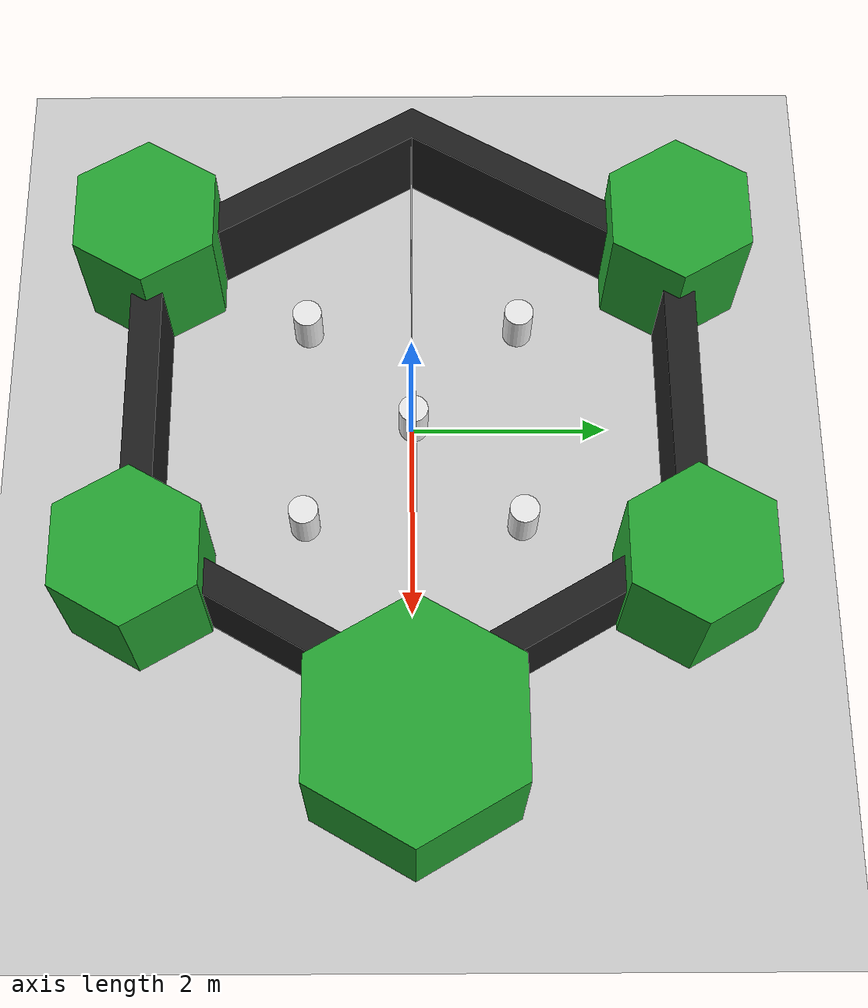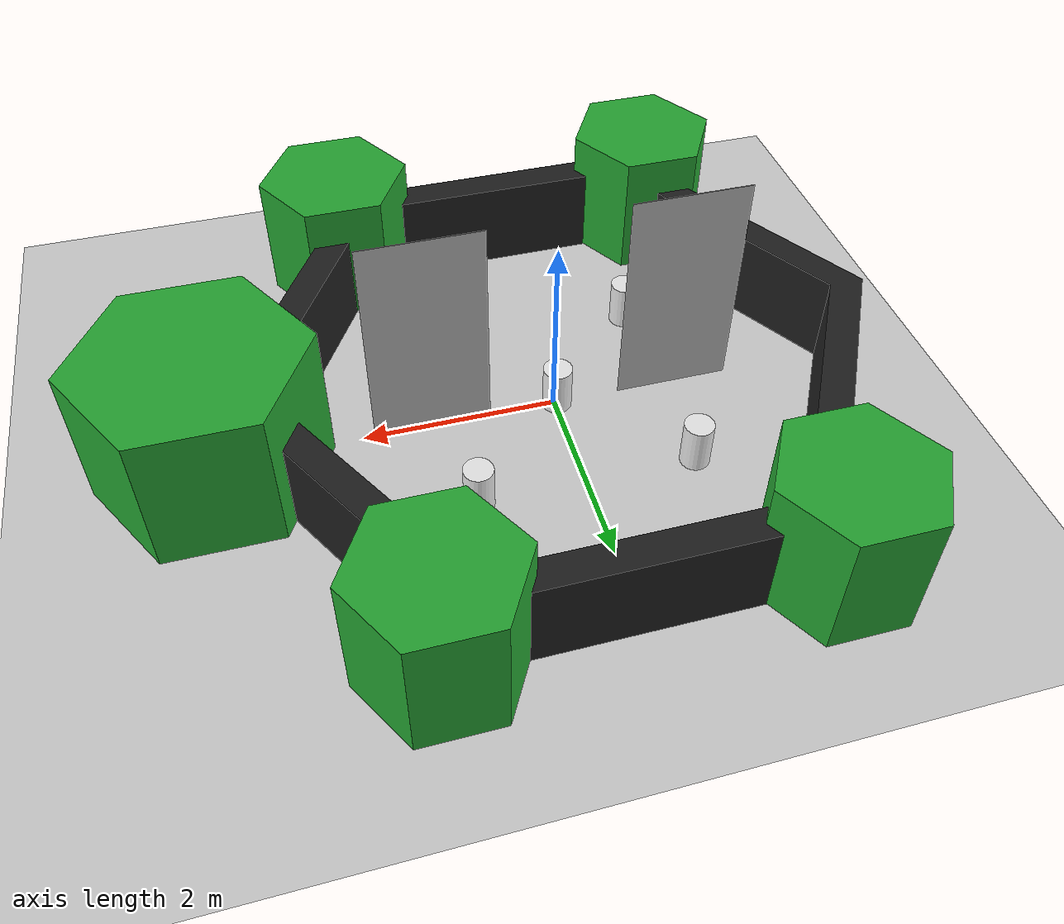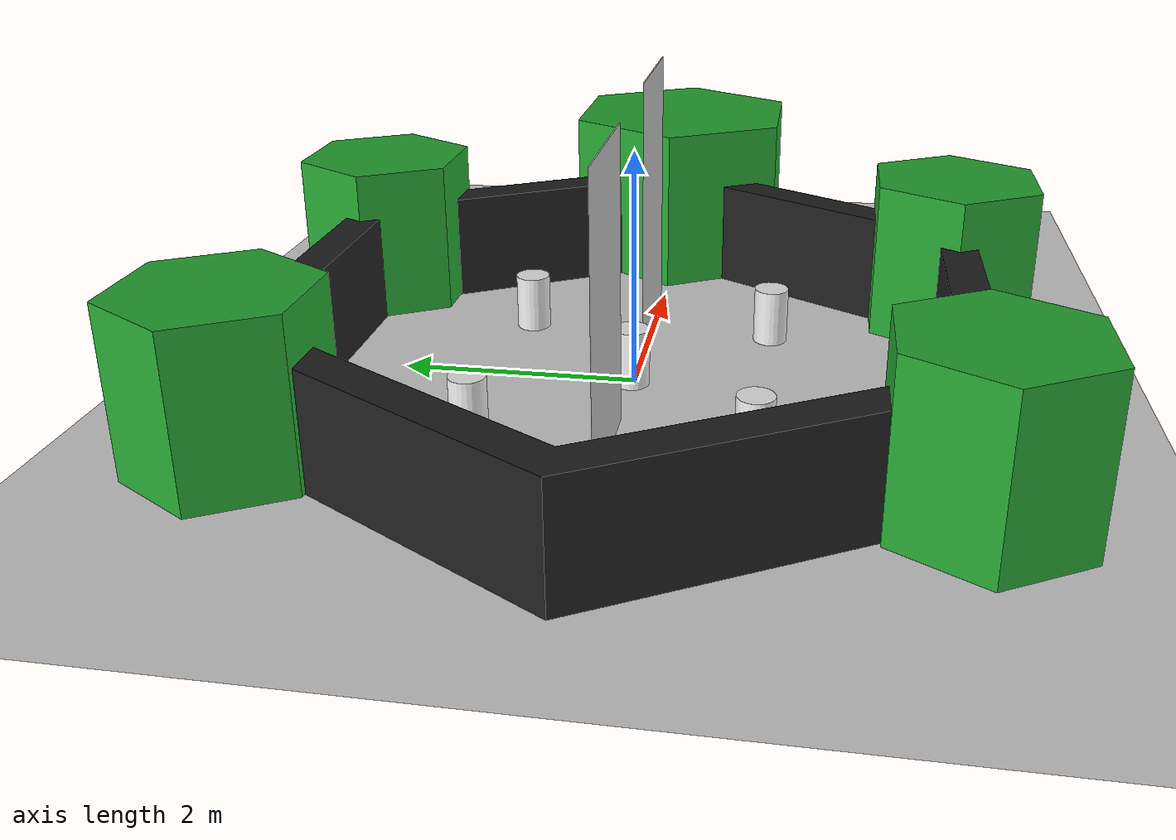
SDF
<sdf version="1.6">
 <world name="default">
  <light name="sun" type="directional">
   <pose>0 0 10 0 -0 0</pose>
   <diffuse>0.8 0.8 0.8 1</diffuse>
   <specular>0.2 0.2 0.2 1</specular>
   <attenuation>
    <range>1000</range>
    <constant>0.9</constant>
    <linear>0.01</linear>
    <quadratic>0.001</quadratic>
   </attenuation>
   <direction>-0.5 0.1 -0.9</direction>
  </light>
  <model name="ground_plane">
   <static>1</static>
   <link name="link">
    <collision name="collision">
     <geometry><plane><normal>0 0 1</normal><size>100 100</size></plane></geometry>
     <surface>
      <contact><collide_bitmask>65535</collide_bitmask></contact>
      <friction><ode><mu>100</mu><mu2>50</mu2></ode></friction>
     </surface>
    </collision>
    <visual name="visual">
     <cast_shadows>0</cast_shadows>
     <geometry><plane><normal>0 0 1</normal><size>100 100</size></plane></geometry>
     <material>
      <script><uri>file://media/materials/scripts/gazebo.material</uri><name>Gazebo/Grey</name></script>
     </material>
    </visual>
   </link>
  </model>
  <physics name="default_physics" default="0" type="ode">
   <real_time_update_rate>0</real_time_update_rate>
   <max_step_size>0.001</max_step_size>
   <real_time_factor>1</real_time_factor>
   <ode>
    <solver>
     <type>quick</type>
     <iters>150</iters>
     <precon_iters>0</precon_iters>
     <sor>1.4</sor>
     <use_dynamic_moi_rescaling>1</use_dynamic_moi_rescaling>
    </solver>
    <constraints>
     <cfm>1e-05</cfm>
     <erp>0.2</erp>
     <contact_max_correcting_vel>2000</contact_max_correcting_vel>
     <contact_surface_layer>0.01</contact_surface_layer>
    </constraints>
   </ode>
  </physics>
  <scene><ambient>0.4 0.4 0.4 1</ambient><background>0.7 0.7 0.7 1</background><shadows>0</shadows></scene>
  <gravity>0 0 -9.8</gravity>
  <magnetic_field>6e-06 2.3e-05 -4.2e-05</magnetic_field>
  <atmosphere type="adiabatic"/>
  <audio><device>default</device></audio>
  <spherical_coordinates>
   <surface_model>EARTH_WGS84</surface_model>
   <latitude_deg>0</latitude_deg>
   <longitude_deg>0</longitude_deg>
   <elevation>0</elevation>
   <heading_deg>0</heading_deg>
  </spherical_coordinates>
  <model name="ros_symbol_5_pillars_with_walls">
   <link name="symbol">
    <inertial>
     <mass>1</mass>
     <inertia><ixx>1</ixx><ixy>0</ixy><ixz>0</ixz><iyy>1</iyy><iyz>0</iyz><izz>1</izz></inertia>
    </inertial>
    <visual name="left_hand">
     <pose>1.8 2.7 0 0 -0 0</pose>
     <geometry>
      <mesh><uri>model://turtlebot3_world/meshes/hexagon.dae</uri><scale>0.55 0.55 0.55</scale></mesh>
     </geometry>
     <material>
      <script><uri>file://media/materials/scripts/gazebo.material</uri><name>Gazebo/Green</name></script>
      <shader type="vertex"><normal_map>__default__</normal_map></shader>
      <ambient>0 1 0 1</ambient>
      <diffuse>0 1 0 1</diffuse>
      <specular>0.1 0.1 0.1 1</specular>
      <emissive>0 0 0 1</emissive>
     </material>
    </visual>
    <visual name="two_two">
     <pose>0 0 0.25 0 -0 0</pose>
     <geometry><cylinder><radius>0.15</radius><length>0.5</length></cylinder></geometry>
     <material>
      <script><uri>file://media/materials/scripts/gazebo.material</uri><name>Gazebo/White</name></script>
      <shader type="vertex"><normal_map>__default__</normal_map></shader>
      <ambient>1 1 1 1</ambient>
      <diffuse>1 1 1 1</diffuse>
      <specular>0 0 0 1</specular>
      <emissive>0 0 0 1</emissive>
     </material>
    </visual>
    <visual name="right_hand">
     <pose>1.8 -2.7 0 0 -0 0</pose>
     <geometry>
      <mesh><uri>model://turtlebot3_world/meshes/hexagon.dae</uri><scale>0.55 0.55 0.55</scale></mesh>
     </geometry>
     <material>
      <script><uri>file://media/materials/scripts/gazebo.material</uri><name>Gazebo/Green</name></script>
      <shader type="vertex"><normal_map>__default__</normal_map></shader>
      <ambient>0 1 0 1</ambient>
      <diffuse>0 1 0 1</diffuse>
      <specular>0.1 0.1 0.1 1</specular>
      <emissive>0 0 0 1</emissive>
     </material>
    </visual>
    <visual name="right_foot">
     <pose>-1.8 -2.7 0 0 -0 0</pose>
     <geometry>
      <mesh><uri>model://turtlebot3_world/meshes/hexagon.dae</uri><scale>0.55 0.55 0.55</scale></mesh>
     </geometry>
     <material>
      <script><uri>file://media/materials/scripts/gazebo.material</uri><name>Gazebo/Green</name></script>
      <shader type="vertex"><normal_map>__default__</normal_map></shader>
      <ambient>0 1 0 1</ambient>
      <diffuse>0 1 0 1</diffuse>
      <specular>0.1 0.1 0.1 1</specular>
      <emissive>0 0 0 1</emissive>
     </material>
    </visual>
    <visual name="three_three">
     <pose>1.1 1.1 0.25 0 -0 0</pose>
     <geometry><cylinder><radius>0.15</radius><length>0.5</length></cylinder></geometry>
     <material>
      <script><uri>file://media/materials/scripts/gazebo.material</uri><name>Gazebo/White</name></script>
      <shader type="vertex"><normal_map>__default__</normal_map></shader>
      <ambient>1 1 1 1</ambient>
      <diffuse>1 1 1 1</diffuse>
      <specular>0 0 0 1</specular>
      <emissive>0 0 0 1</emissive>
     </material>
    </visual>
    <visual name="head">
     <pose>3.5 0 -0.5 0 -0 0</pose>
     <geometry>
      <mesh><uri>model://turtlebot3_world/meshes/hexagon.dae</uri><scale>0.8 0.8 0.8</scale></mesh>
     </geometry>
     <material>
      <script><uri>file://media/materials/scripts/gazebo.material</uri><name>Gazebo/Green</name></script>
      <shader type="vertex"><normal_map>__default__</normal_map></shader>
      <ambient>0 1 0 1</ambient>
      <diffuse>0 1 0 1</diffuse>
      <specular>0.1 0.1 0.1 1</specular>
      <emissive>0 0 0 1</emissive>
     </material>
    </visual>
    <visual name="body">
     <pose>0 0 -0.3 0 0 -1.5708</pose>
     <geometry>
      <mesh><uri>model://turtlebot3_world/meshes/wall.dae</uri><scale>0.25 0.25 0.25</scale></mesh>
     </geometry>
     <material>
      <script><uri>file://media/materials/scripts/gazebo.material</uri><name>Gazebo/FlatBlack</name></script>
      <shader type="vertex"><normal_map>__default__</normal_map></shader>
      <ambient>0.1 0.1 0.1 1</ambient>
      <diffuse>0.1 0.1 0.1 1</diffuse>
      <specular>0.01 0.01 0.01 1</specular>
      <emissive>0 0 0 1</emissive>
     </material>
    </visual>
    <visual name="three_one">
     <pose>1.1 -1.1 0.25 0 -0 0</pose>
     <geometry><cylinder><radius>0.15</radius><length>0.5</length></cylinder></geometry>
     <material>
      <script><uri>file://media/materials/scripts/gazebo.material</uri><name>Gazebo/White</name></script>
      <shader type="vertex"><normal_map>__default__</normal_map></shader>
      <ambient>1 1 1 1</ambient>
      <diffuse>1 1 1 1</diffuse>
      <specular>0 0 0 1</specular>
      <emissive>0 0 0 1</emissive>
     </material>
    </visual>
    <visual name="one_one">
     <pose>-1.1 -1.1 0.25 0 -0 0</pose>
     <geometry><cylinder><radius>0.15</radius><length>0.5</length></cylinder></geometry>
     <material>
      <script><uri>file://media/materials/scripts/gazebo.material</uri><name>Gazebo/White</name></script>
      <shader type="vertex"><normal_map>__default__</normal_map></shader>
      <ambient>1 1 1 1</ambient>
      <diffuse>1 1 1 1</diffuse>
      <specular>0 0 0 1</specular>
      <emissive>0 0 0 1</emissive>
     </material>
    </visual>
    <visual name="one_three">
     <pose>-1.1 1.1 0.25 0 -0 0</pose>
     <geometry><cylinder><radius>0.15</radius><length>0.5</length></cylinder></geometry>
     <material>
      <script><uri>file://media/materials/scripts/gazebo.material</uri><name>Gazebo/White</name></script>
      <shader type="vertex"><normal_map>__default__</normal_map></shader>
      <ambient>1 1 1 1</ambient>
      <diffuse>1 1 1 1</diffuse>
      <specular>0 0 0 1</specular>
      <emissive>0 0 0 1</emissive>
     </material>
    </visual>
    <visual name="left_foot">
     <pose>-1.8 2.7 0 0 -0 0</pose>
     <geometry>
      <mesh><uri>model://turtlebot3_world/meshes/hexagon.dae</uri><scale>0.55 0.55 0.55</scale></mesh>
     </geometry>
     <material>
      <script><uri>file://media/materials/scripts/gazebo.material</uri><name>Gazebo/Green</name></script>
      <shader type="vertex"><normal_map>__default__</normal_map></shader>
      <ambient>0 1 0 1</ambient>
      <diffuse>0 1 0 1</diffuse>
      <specular>0.1 0.1 0.1 1</specular>
      <emissive>0 0 0 1</emissive>
     </material>
    </visual>
    <collision name="left_foot">
     <pose>-1.8 2.7 0 0 -0 0</pose>
     <geometry>
      <mesh>
       <uri>/opt/ros/melodic/share/turtlebot3_gazebo/models/turtlebot3_world/meshes/hexagon.dae</uri>
       <scale>0.55 0.55 0.55</scale>
      </mesh>
     </geometry>
     <surface>
      <friction>
       <ode><mu>1</mu><mu2>1</mu2><fdir1>0 0 0</fdir1><slip1>0</slip1><slip2>0</slip2></ode>
       <torsional>
        <coefficient>1</coefficient>
        <patch_radius>0</patch_radius>
        <surface_radius>0</surface_radius>
        <use_patch_radius>1</use_patch_radius>
        <ode><slip>0</slip></ode>
       </torsional>
      </friction>
      <bounce><restitution_coefficient>0</restitution_coefficient><threshold>1e+06</threshold></bounce>
      <contact>
       <collide_without_contact>0</collide_without_contact>
       <collide_without_contact_bitmask>1</collide_without_contact_bitmask>
       <collide_bitmask>1</collide_bitmask>
       <ode>
        <soft_cfm>0</soft_cfm>
        <soft_erp>0.2</soft_erp>
        <kp>1e+13</kp>
        <kd>1</kd>
        <max_vel>0.01</max_vel>
        <min_depth>0</min_depth>
       </ode>
       <bullet>
        <split_impulse>1</split_impulse>
        <split_impulse_penetration_threshold>-0.01</split_impulse_penetration_threshold>
        <soft_cfm>0</soft_cfm>
        <soft_erp>0.2</soft_erp>
        <kp>1e+13</kp>
        <kd>1</kd>
       </bullet>
      </contact>
     </surface>
    </collision>
    <collision name="one_three">
     <pose>-1.1 1.1 0.25 0 -0 0</pose>
     <geometry><cylinder><radius>0.15</radius><length>0.5</length></cylinder></geometry>
     <surface>
      <friction>
       <ode><mu>1</mu><mu2>1</mu2><fdir1>0 0 0</fdir1><slip1>0</slip1><slip2>0</slip2></ode>
       <torsional>
        <coefficient>1</coefficient>
        <patch_radius>0</patch_radius>
        <surface_radius>0</surface_radius>
        <use_patch_radius>1</use_patch_radius>
        <ode><slip>0</slip></ode>
       </torsional>
      </friction>
      <bounce><restitution_coefficient>0</restitution_coefficient><threshold>1e+06</threshold></bounce>
      <contact>
       <collide_without_contact>0</collide_without_contact>
       <collide_without_contact_bitmask>1</collide_without_contact_bitmask>
       <collide_bitmask>1</collide_bitmask>
       <ode>
        <soft_cfm>0</soft_cfm>
        <soft_erp>0.2</soft_erp>
        <kp>1e+13</kp>
        <kd>1</kd>
        <max_vel>0.01</max_vel>
        <min_depth>0</min_depth>
       </ode>
       <bullet>
        <split_impulse>1</split_impulse>
        <split_impulse_penetration_threshold>-0.01</split_impulse_penetration_threshold>
        <soft_cfm>0</soft_cfm>
        <soft_erp>0.2</soft_erp>
        <kp>1e+13</kp>
        <kd>1</kd>
       </bullet>
      </contact>
     </surface>
    </collision>
    <collision name="three_one">
     <pose>1.1 -1.1 0.25 0 -0 0</pose>
     <geometry><cylinder><radius>0.15</radius><length>0.5</length></cylinder></geometry>
     <surface>
      <friction>
       <ode><mu>1</mu><mu2>1</mu2><fdir1>0 0 0</fdir1><slip1>0</slip1><slip2>0</slip2></ode>
       <torsional>
        <coefficient>1</coefficient>
        <patch_radius>0</patch_radius>
        <surface_radius>0</surface_radius>
        <use_patch_radius>1</use_patch_radius>
        <ode><slip>0</slip></ode>
       </torsional>
      </friction>
      <bounce><restitution_coefficient>0</restitution_coefficient><threshold>1e+06</threshold></bounce>
      <contact>
       <collide_without_contact>0</collide_without_contact>
       <collide_without_contact_bitmask>1</collide_without_contact_bitmask>
       <collide_bitmask>1</collide_bitmask>
       <ode>
        <soft_cfm>0</soft_cfm>
        <soft_erp>0.2</soft_erp>
        <kp>1e+13</kp>
        <kd>1</kd>
        <max_vel>0.01</max_vel>
        <min_depth>0</min_depth>
       </ode>
       <bullet>
        <split_impulse>1</split_impulse>
        <split_impulse_penetration_threshold>-0.01</split_impulse_penetration_threshold>
        <soft_cfm>0</soft_cfm>
        <soft_erp>0.2</soft_erp>
        <kp>1e+13</kp>
        <kd>1</kd>
       </bullet>
      </contact>
     </surface>
    </collision>
    <collision name="left_hand">
     <pose>1.8 2.7 0 0 -0 0</pose>
     <geometry>
      <mesh>
       <uri>/opt/ros/melodic/share/turtlebot3_gazebo/models/turtlebot3_world/meshes/hexagon.dae</uri>
       <scale>0.55 0.55 0.55</scale>
      </mesh>
     </geometry>
     <surface>
      <friction>
       <ode><mu>1</mu><mu2>1</mu2><fdir1>0 0 0</fdir1><slip1>0</slip1><slip2>0</slip2></ode>
       <torsional>
        <coefficient>1</coefficient>
        <patch_radius>0</patch_radius>
        <surface_radius>0</surface_radius>
        <use_patch_radius>1</use_patch_radius>
        <ode><slip>0</slip></ode>
       </torsional>
      </friction>
      <bounce><restitution_coefficient>0</restitution_coefficient><threshold>1e+06</threshold></bounce>
      <contact>
       <collide_without_contact>0</collide_without_contact>
       <collide_without_contact_bitmask>1</collide_without_contact_bitmask>
       <collide_bitmask>1</collide_bitmask>
       <ode>
        <soft_cfm>0</soft_cfm>
        <soft_erp>0.2</soft_erp>
        <kp>1e+13</kp>
        <kd>1</kd>
        <max_vel>0.01</max_vel>
        <min_depth>0</min_depth>
       </ode>
       <bullet>
        <split_impulse>1</split_impulse>
        <split_impulse_penetration_threshold>-0.01</split_impulse_penetration_threshold>
        <soft_cfm>0</soft_cfm>
        <soft_erp>0.2</soft_erp>
        <kp>1e+13</kp>
        <kd>1</kd>
       </bullet>
      </contact>
     </surface>
    </collision>
    <collision name="three_three">
     <pose>1.1 1.1 0.25 0 -0 0</pose>
     <geometry><cylinder><radius>0.15</radius><length>0.5</length></cylinder></geometry>
     <surface>
      <friction>
       <ode><mu>1</mu><mu2>1</mu2><fdir1>0 0 0</fdir1><slip1>0</slip1><slip2>0</slip2></ode>
       <torsional>
        <coefficient>1</coefficient>
        <patch_radius>0</patch_radius>
        <surface_radius>0</surface_radius>
        <use_patch_radius>1</use_patch_radius>
        <ode><slip>0</slip></ode>
       </torsional>
      </friction>
      <bounce><restitution_coefficient>0</restitution_coefficient><threshold>1e+06</threshold></bounce>
      <contact>
       <collide_without_contact>0</collide_without_contact>
       <collide_without_contact_bitmask>1</collide_without_contact_bitmask>
       <collide_bitmask>1</collide_bitmask>
       <ode>
        <soft_cfm>0</soft_cfm>
        <soft_erp>0.2</soft_erp>
        <kp>1e+13</kp>
        <kd>1</kd>
        <max_vel>0.01</max_vel>
        <min_depth>0</min_depth>
       </ode>
       <bullet>
        <split_impulse>1</split_impulse>
        <split_impulse_penetration_threshold>-0.01</split_impulse_penetration_threshold>
        <soft_cfm>0</soft_cfm>
        <soft_erp>0.2</soft_erp>
        <kp>1e+13</kp>
        <kd>1</kd>
       </bullet>
      </contact>
     </surface>
    </collision>
    <collision name="two_two">
     <pose>0 0 0.25 0 -0 0</pose>
     <geometry><cylinder><radius>0.15</radius><length>0.5</length></cylinder></geometry>
     <surface>
      <friction>
       <ode><mu>1</mu><mu2>1</mu2><fdir1>0 0 0</fdir1><slip1>0</slip1><slip2>0</slip2></ode>
       <torsional>
        <coefficient>1</coefficient>
        <patch_radius>0</patch_radius>
        <surface_radius>0</surface_radius>
        <use_patch_radius>1</use_patch_radius>
        <ode><slip>0</slip></ode>
       </torsional>
      </friction>
      <bounce><restitution_coefficient>0</restitution_coefficient><threshold>1e+06</threshold></bounce>
      <contact>
       <collide_without_contact>0</collide_without_contact>
       <collide_without_contact_bitmask>1</collide_without_contact_bitmask>
       <collide_bitmask>1</collide_bitmask>
       <ode>
        <soft_cfm>0</soft_cfm>
        <soft_erp>0.2</soft_erp>
        <kp>1e+13</kp>
        <kd>1</kd>
        <max_vel>0.01</max_vel>
        <min_depth>0</min_depth>
       </ode>
       <bullet>
        <split_impulse>1</split_impulse>
        <split_impulse_penetration_threshold>-0.01</split_impulse_penetration_threshold>
        <soft_cfm>0</soft_cfm>
        <soft_erp>0.2</soft_erp>
        <kp>1e+13</kp>
        <kd>1</kd>
       </bullet>
      </contact>
     </surface>
    </collision>
    <collision name="right_hand">
     <pose>1.8 -2.7 0 0 -0 0</pose>
     <geometry>
      <mesh>
       <uri>/opt/ros/melodic/share/turtlebot3_gazebo/models/turtlebot3_world/meshes/hexagon.dae</uri>
       <scale>0.55 0.55 0.55</scale>
      </mesh>
     </geometry>
     <surface>
      <friction>
       <ode><mu>1</mu><mu2>1</mu2><fdir1>0 0 0</fdir1><slip1>0</slip1><slip2>0</slip2></ode>
       <torsional>
        <coefficient>1</coefficient>
        <patch_radius>0</patch_radius>
        <surface_radius>0</surface_radius>
        <use_patch_radius>1</use_patch_radius>
        <ode><slip>0</slip></ode>
       </torsional>
      </friction>
      <bounce><restitution_coefficient>0</restitution_coefficient><threshold>1e+06</threshold></bounce>
      <contact>
       <collide_without_contact>0</collide_without_contact>
       <collide_without_contact_bitmask>1</collide_without_contact_bitmask>
       <collide_bitmask>1</collide_bitmask>
       <ode>
        <soft_cfm>0</soft_cfm>
        <soft_erp>0.2</soft_erp>
        <kp>1e+13</kp>
        <kd>1</kd>
        <max_vel>0.01</max_vel>
        <min_depth>0</min_depth>
       </ode>
       <bullet>
        <split_impulse>1</split_impulse>
        <split_impulse_penetration_threshold>-0.01</split_impulse_penetration_threshold>
        <soft_cfm>0</soft_cfm>
        <soft_erp>0.2</soft_erp>
        <kp>1e+13</kp>
        <kd>1</kd>
       </bullet>
      </contact>
     </surface>
    </collision>
    <collision name="head">
     <pose>3.5 0 -0.5 0 -0 0</pose>
     <geometry>
      <mesh>
       <uri>/opt/ros/melodic/share/turtlebot3_gazebo/models/turtlebot3_world/meshes/hexagon.dae</uri>
       <scale>0.8 0.8 0.8</scale>
      </mesh>
     </geometry>
     <surface>
      <friction>
       <ode><mu>1</mu><mu2>1</mu2><fdir1>0 0 0</fdir1><slip1>0</slip1><slip2>0</slip2></ode>
       <torsional>
        <coefficient>1</coefficient>
        <patch_radius>0</patch_radius>
        <surface_radius>0</surface_radius>
        <use_patch_radius>1</use_patch_radius>
        <ode><slip>0</slip></ode>
       </torsional>
      </friction>
      <bounce><restitution_coefficient>0</restitution_coefficient><threshold>1e+06</threshold></bounce>
      <contact>
       <collide_without_contact>0</collide_without_contact>
       <collide_without_contact_bitmask>1</collide_without_contact_bitmask>
       <collide_bitmask>1</collide_bitmask>
       <ode>
        <soft_cfm>0</soft_cfm>
        <soft_erp>0.2</soft_erp>
        <kp>1e+13</kp>
        <kd>1</kd>
        <max_vel>0.01</max_vel>
        <min_depth>0</min_depth>
       </ode>
       <bullet>
        <split_impulse>1</split_impulse>
        <split_impulse_penetration_threshold>-0.01</split_impulse_penetration_threshold>
        <soft_cfm>0</soft_cfm>
        <soft_erp>0.2</soft_erp>
        <kp>1e+13</kp>
        <kd>1</kd>
       </bullet>
      </contact>
     </surface>
    </collision>
    <collision name="one_one">
     <pose>-1.1 -1.1 0.25 0 -0 0</pose>
     <geometry><cylinder><radius>0.15</radius><length>0.5</length></cylinder></geometry>
     <surface>
      <friction>
       <ode><mu>1</mu><mu2>1</mu2><fdir1>0 0 0</fdir1><slip1>0</slip1><slip2>0</slip2></ode>
       <torsional>
        <coefficient>1</coefficient>
        <patch_radius>0</patch_radius>
        <surface_radius>0</surface_radius>
        <use_patch_radius>1</use_patch_radius>
        <ode><slip>0</slip></ode>
       </torsional>
      </friction>
      <bounce><restitution_coefficient>0</restitution_coefficient><threshold>1e+06</threshold></bounce>
      <contact>
       <collide_without_contact>0</collide_without_contact>
       <collide_without_contact_bitmask>1</collide_without_contact_bitmask>
       <collide_bitmask>1</collide_bitmask>
       <ode>
        <soft_cfm>0</soft_cfm>
        <soft_erp>0.2</soft_erp>
        <kp>1e+13</kp>
        <kd>1</kd>
        <max_vel>0.01</max_vel>
        <min_depth>0</min_depth>
       </ode>
       <bullet>
        <split_impulse>1</split_impulse>
        <split_impulse_penetration_threshold>-0.01</split_impulse_penetration_threshold>
        <soft_cfm>0</soft_cfm>
        <soft_erp>0.2</soft_erp>
        <kp>1e+13</kp>
        <kd>1</kd>
       </bullet>
      </contact>
     </surface>
    </collision>
    <collision name="right_foot">
     <pose>-1.8 -2.7 0 0 -0 0</pose>
     <geometry>
      <mesh>
       <uri>/opt/ros/melodic/share/turtlebot3_gazebo/models/turtlebot3_world/meshes/hexagon.dae</uri>
       <scale>0.55 0.55 0.55</scale>
      </mesh>
     </geometry>
     <surface>
      <friction>
       <ode><mu>1</mu><mu2>1</mu2><fdir1>0 0 0</fdir1><slip1>0</slip1><slip2>0</slip2></ode>
       <torsional>
        <coefficient>1</coefficient>
        <patch_radius>0</patch_radius>
        <surface_radius>0</surface_radius>
        <use_patch_radius>1</use_patch_radius>
        <ode><slip>0</slip></ode>
       </torsional>
      </friction>
      <bounce><restitution_coefficient>0</restitution_coefficient><threshold>1e+06</threshold></bounce>
      <contact>
       <collide_without_contact>0</collide_without_contact>
       <collide_without_contact_bitmask>1</collide_without_contact_bitmask>
       <collide_bitmask>1</collide_bitmask>
       <ode>
        <soft_cfm>0</soft_cfm>
        <soft_erp>0.2</soft_erp>
        <kp>1e+13</kp>
        <kd>1</kd>
        <max_vel>0.01</max_vel>
        <min_depth>0</min_depth>
       </ode>
       <bullet>
        <split_impulse>1</split_impulse>
        <split_impulse_penetration_threshold>-0.01</split_impulse_penetration_threshold>
        <soft_cfm>0</soft_cfm>
        <soft_erp>0.2</soft_erp>
        <kp>1e+13</kp>
        <kd>1</kd>
       </bullet>
      </contact>
     </surface>
    </collision>
    <collision name="body">
     <pose>0 0 -0.3 0 0 -1.5708</pose>
     <geometry>
      <mesh>
       <uri>/opt/ros/melodic/share/turtlebot3_gazebo/models/turtlebot3_world/meshes/wall.dae</uri>
       <scale>0.25 0.25 0.25</scale>
      </mesh>
     </geometry>
     <surface>
      <friction>
       <ode><mu>1</mu><mu2>1</mu2><fdir1>0 0 0</fdir1><slip1>0</slip1><slip2>0</slip2></ode>
       <torsional>
        <coefficient>1</coefficient>
        <patch_radius>0</patch_radius>
        <surface_radius>0</surface_radius>
        <use_patch_radius>1</use_patch_radius>
        <ode><slip>0</slip></ode>
       </torsional>
      </friction>
      <bounce><restitution_coefficient>0</restitution_coefficient><threshold>1e+06</threshold></bounce>
      <contact>
       <collide_without_contact>0</collide_without_contact>
       <collide_without_contact_bitmask>1</collide_without_contact_bitmask>
       <collide_bitmask>1</collide_bitmask>
       <ode>
        <soft_cfm>0</soft_cfm>
        <soft_erp>0.2</soft_erp>
        <kp>1e+13</kp>
        <kd>1</kd>
        <max_vel>0.01</max_vel>
        <min_depth>0</min_depth>
       </ode>
       <bullet>
        <split_impulse>1</split_impulse>
        <split_impulse_penetration_threshold>-0.01</split_impulse_penetration_threshold>
        <soft_cfm>0</soft_cfm>
        <soft_erp>0.2</soft_erp>
        <kp>1e+13</kp>
        <kd>1</kd>
       </bullet>
      </contact>
     </surface>
    </collision>
   </link>
   <model name="nist_maze_wall_240">
    <static>1</static>
    <link name="nist__maze_wall_240_link">
     <collision name="collision">
      <geometry>
       <mesh><uri>model://nist_maze_wall_240/meshes/nist_maze_wall_240.dae</uri><scale>1 1 1</scale></mesh>
      </geometry>
     </collision>
     <visual name="visual">
      <geometry>
       <mesh><uri>model://nist_maze_wall_240/meshes/nist_maze_wall_240.dae</uri><scale>1 1 1</scale></mesh>
      </geometry>
     </visual>
    </link>
    <pose>-1.2713 -0.615306 0 0 -0 0</pose>
   </model>
   <model name="nist_maze_wall_240_clone">
    <static>1</static>
    <link name="nist__maze_wall_240_link">
     <collision name="collision">
      <geometry>
       <mesh><uri>model://nist_maze_wall_240/meshes/nist_maze_wall_240.dae</uri><scale>1 1 1</scale></mesh>
      </geometry>
     </collision>
     <visual name="visual">
      <geometry>
       <mesh><uri>model://nist_maze_wall_240/meshes/nist_maze_wall_240.dae</uri><scale>1 1 1</scale></mesh>
      </geometry>
     </visual>
    </link>
    <pose>1.31843 -0.585755 0 0 -0 0</pose>
   </model>
   <static>1</static>
   <pose>-0.029272 0.018724 0 0 -0 0</pose>
  </model>
 </world>
</sdf>
